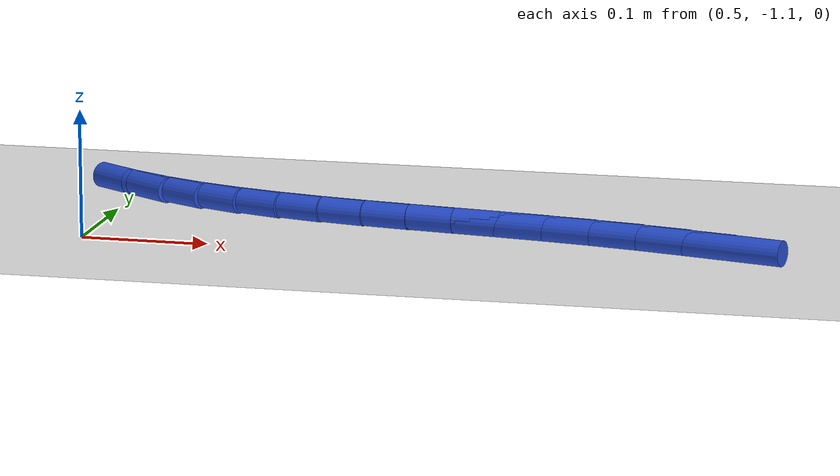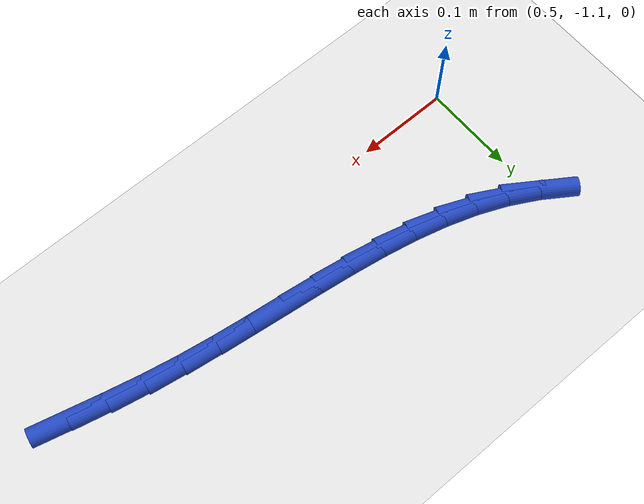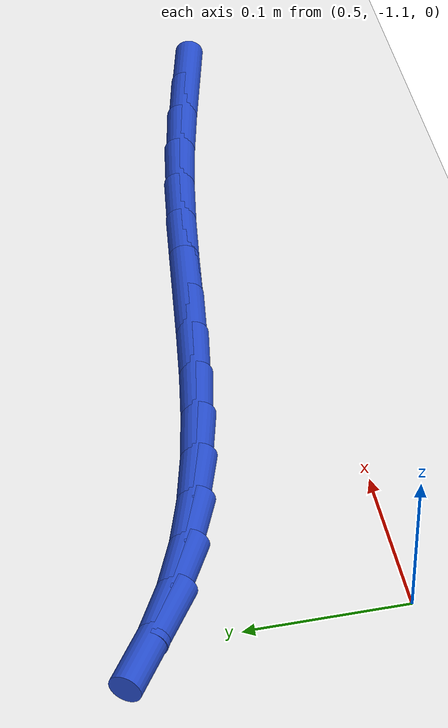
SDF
<sdf version="1.6">
 <world name="default">
  <model name="ground_plane">
   <static>1</static>
   <link name="link">
    <collision name="collision">
     <geometry><plane><normal>0 0 1</normal><size>100 100</size></plane></geometry>
     <surface><friction><ode><mu>100</mu><mu2>50</mu2></ode></friction></surface>
    </collision>
    <visual name="visual">
     <cast_shadows>0</cast_shadows>
     <geometry><plane><normal>0 0 1</normal><size>100 100</size></plane></geometry>
     <material>
      <script><uri>file://media/materials/scripts/gazebo.material</uri><name>Gazebo/WhiteGlow</name></script>
     </material>
    </visual>
   </link>
  </model>
  <model name="line">
   <link name="link_136">
    <pose>1.0019807987908775 -1.0643047222809148 0.01 0 1.57 -0.24625116993849913</pose>
    <collision name="collision">
     <geometry><cylinder><radius>0.01</radius><length>0.08</length></cylinder></geometry>
    </collision>
    <visual name="visual">
     <material>
      <script><name>Gazebo/Blue</name><uri>file://media/materials/scripts/gazebo.material</uri></script>
     </material>
     <geometry><cylinder><radius>0.01</radius><length>0.08</length></cylinder></geometry>
    </visual>
   </link>
   <link name="link_137">
    <pose>0.964318704739499 -1.0548382619355379 0.01 0 1.57 -0.23000788325122856</pose>
    <collision name="collision">
     <geometry><cylinder><radius>0.01</radius><length>0.08</length></cylinder></geometry>
    </collision>
    <visual name="visual">
     <material>
      <script><name>Gazebo/Blue</name><uri>file://media/materials/scripts/gazebo.material</uri></script>
     </material>
     <geometry><cylinder><radius>0.01</radius><length>0.08</length></cylinder></geometry>
    </visual>
   </link>
   <link name="link_138">
    <pose>0.9263805071585177 -1.0459549693191512 0.01 0 1.57 -0.19750952353248688</pose>
    <collision name="collision">
     <geometry><cylinder><radius>0.01</radius><length>0.08</length></cylinder></geometry>
    </collision>
    <visual name="visual">
     <material>
      <script><name>Gazebo/Blue</name><uri>file://media/materials/scripts/gazebo.material</uri></script>
     </material>
     <geometry><cylinder><radius>0.01</radius><length>0.08</length></cylinder></geometry>
    </visual>
   </link>
   <link name="link_139">
    <pose>0.8882694668585941 -1.0383282441507091 0.01 0 1.57 -0.16258795122360722</pose>
    <collision name="collision">
     <geometry><cylinder><radius>0.01</radius><length>0.08</length></cylinder></geometry>
    </collision>
    <visual name="visual">
     <material>
      <script><name>Gazebo/Blue</name><uri>file://media/materials/scripts/gazebo.material</uri></script>
     </material>
     <geometry><cylinder><radius>0.01</radius><length>0.08</length></cylinder></geometry>
    </visual>
   </link>
   <link name="link_140">
    <pose>0.8501131222335413 -1.0320692328193497 0.01 0 1.57 -0.13859126730358481</pose>
    <collision name="collision">
     <geometry><cylinder><radius>0.01</radius><length>0.08</length></cylinder></geometry>
    </collision>
    <visual name="visual">
     <material>
      <script><name>Gazebo/Blue</name><uri>file://media/materials/scripts/gazebo.material</uri></script>
     </material>
     <geometry><cylinder><radius>0.01</radius><length>0.08</length></cylinder></geometry>
    </visual>
   </link>
   <link name="link_141">
    <pose>0.8120617868005998 -1.0267616243926592 0.01 0 1.57 -0.1261393245861106</pose>
    <collision name="collision">
     <geometry><cylinder><radius>0.01</radius><length>0.08</length></cylinder></geometry>
    </collision>
    <visual name="visual">
     <material>
      <script><name>Gazebo/Blue</name><uri>file://media/materials/scripts/gazebo.material</uri></script>
     </material>
     <geometry><cylinder><radius>0.01</radius><length>0.08</length></cylinder></geometry>
    </visual>
   </link>
   <link name="link_142">
    <pose>0.7742666542047868 -1.0219687247406914 0.01 0 1.57 -0.1254455986243698</pose>
    <collision name="collision">
     <geometry><cylinder><radius>0.01</radius><length>0.08</length></cylinder></geometry>
    </collision>
    <visual name="visual">
     <material>
      <script><name>Gazebo/Blue</name><uri>file://media/materials/scripts/gazebo.material</uri></script>
     </material>
     <geometry><cylinder><radius>0.01</radius><length>0.08</length></cylinder></geometry>
    </visual>
   </link>
   <link name="link_143">
    <pose>0.7368789180911194 -1.017253839733502 0.01 0 1.57 -0.1368978319249789</pose>
    <collision name="collision">
     <geometry><cylinder><radius>0.01</radius><length>0.08</length></cylinder></geometry>
    </collision>
    <visual name="visual">
     <material>
      <script><name>Gazebo/Blue</name><uri>file://media/materials/scripts/gazebo.material</uri></script>
     </material>
     <geometry><cylinder><radius>0.01</radius><length>0.08</length></cylinder></geometry>
    </visual>
   </link>
   <link name="link_144">
    <pose>0.7000497721046148 -1.0121802752411448 0.01 0 1.57 -0.1610795437478159</pose>
    <collision name="collision">
     <geometry><cylinder><radius>0.01</radius><length>0.08</length></cylinder></geometry>
    </collision>
    <visual name="visual">
     <material>
      <script><name>Gazebo/Blue</name><uri>file://media/materials/scripts/gazebo.material</uri></script>
     </material>
     <geometry><cylinder><radius>0.01</radius><length>0.08</length></cylinder></geometry>
    </visual>
   </link>
   <link name="link_145">
    <pose>0.6639304098902895 -1.0063113371336752 0.01 0 1.57 -0.19874045529934972</pose>
    <collision name="collision">
     <geometry><cylinder><radius>0.01</radius><length>0.08</length></cylinder></geometry>
    </collision>
    <visual name="visual">
     <material>
      <script><name>Gazebo/Blue</name><uri>file://media/materials/scripts/gazebo.material</uri></script>
     </material>
     <geometry><cylinder><radius>0.01</radius><length>0.08</length></cylinder></geometry>
    </visual>
   </link>
   <link name="link_146">
    <pose>0.6286720250931607 -0.9992103312811474 0.01 0 1.57 -0.25069270564302637</pose>
    <collision name="collision">
     <geometry><cylinder><radius>0.01</radius><length>0.08</length></cylinder></geometry>
    </collision>
    <visual name="visual">
     <material>
      <script><name>Gazebo/Blue</name><uri>file://media/materials/scripts/gazebo.material</uri></script>
     </material>
     <geometry><cylinder><radius>0.01</radius><length>0.08</length></cylinder></geometry>
    </visual>
   </link>
   <link name="link_147">
    <pose>0.5944258113582452 -0.9904405635536166 0.01 0 1.57 -0.3175990873662099</pose>
    <collision name="collision">
     <geometry><cylinder><radius>0.01</radius><length>0.08</length></cylinder></geometry>
    </collision>
    <visual name="visual">
     <material>
      <script><name>Gazebo/Blue</name><uri>file://media/materials/scripts/gazebo.material</uri></script>
     </material>
     <geometry><cylinder><radius>0.01</radius><length>0.08</length></cylinder></geometry>
    </visual>
   </link>
   <link name="link_148">
    <pose>0.5613429623305598 -0.9795653398211376 0.01 0 1.57 -0.399624903823888</pose>
    <collision name="collision">
     <geometry><cylinder><radius>0.01</radius><length>0.08</length></cylinder></geometry>
    </collision>
    <visual name="visual">
     <material>
      <script><name>Gazebo/Blue</name><uri>file://media/materials/scripts/gazebo.material</uri></script>
     </material>
     <geometry><cylinder><radius>0.01</radius><length>0.08</length></cylinder></geometry>
    </visual>
   </link>
   <link name="link_149">
    <pose>0.5295746716551223 -0.9661479659537645 0.01 0 1.57 -0.4949206408220644</pose>
    <collision name="collision">
     <geometry><cylinder><radius>0.01</radius><length>0.08</length></cylinder></geometry>
    </collision>
    <visual name="visual">
     <material>
      <script><name>Gazebo/Blue</name><uri>file://media/materials/scripts/gazebo.material</uri></script>
     </material>
     <geometry><cylinder><radius>0.01</radius><length>0.08</length></cylinder></geometry>
    </visual>
   </link>
   <link name="link_150">
    <pose>0.49925953788044336 -0.949786118005212 0.01 0 1.57 -0.5888851765232171</pose>
    <collision name="collision">
     <geometry><cylinder><radius>0.01</radius><length>0.08</length></cylinder></geometry>
    </collision>
    <visual name="visual">
     <material>
      <script><name>Gazebo/Blue</name><uri>file://media/materials/scripts/gazebo.material</uri></script>
     </material>
     <geometry><cylinder><radius>0.01</radius><length>0.08</length></cylinder></geometry>
    </visual>
   </link>
  </model>
 </world>
</sdf>
